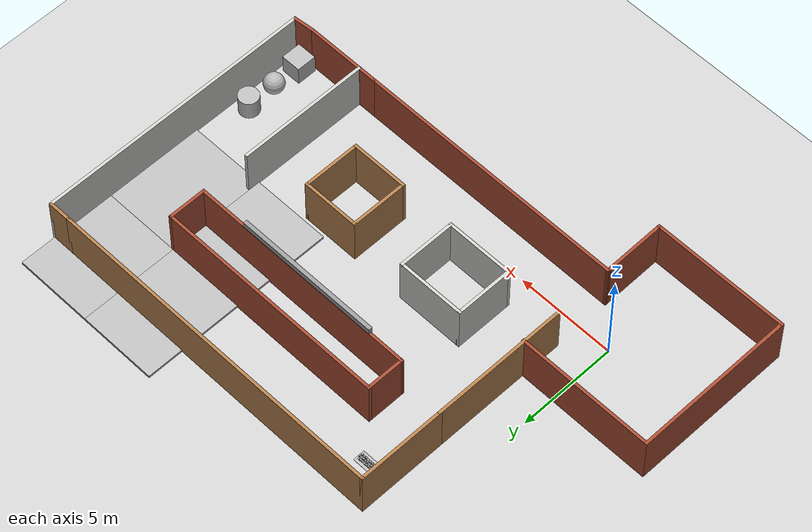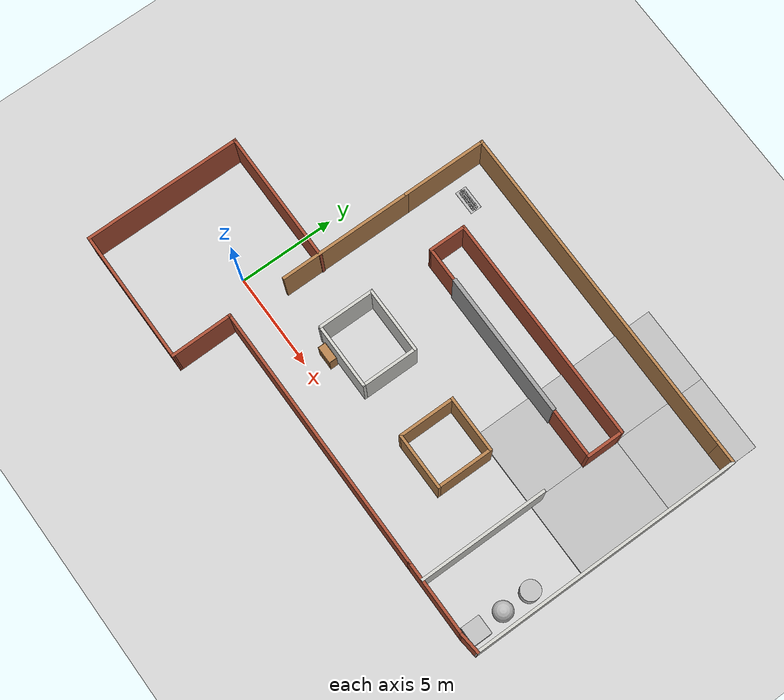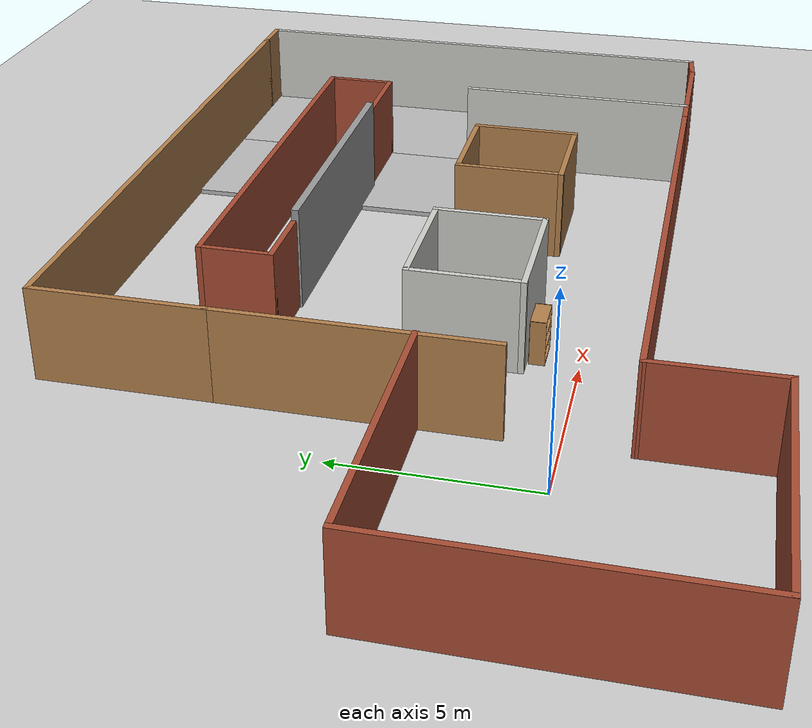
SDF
<sdf version="1.6">
 <world name="default">
  <light name="sun" type="directional">
   <pose>0 0 10 0 -0 0</pose>
   <diffuse>0.8 0.8 0.8 1</diffuse>
   <specular>0.1 0.1 0.1 1</specular>
   <attenuation>
    <range>1000</range>
    <constant>0.9</constant>
    <linear>0.01</linear>
    <quadratic>0.001</quadratic>
   </attenuation>
   <direction>-0.5 0.5 -1</direction>
  </light>
  <model name="ground_plane">
   <static>1</static>
   <link name="link">
    <collision name="collision">
     <geometry><plane><normal>0 0 1</normal><size>100 100</size></plane></geometry>
     <surface><friction><ode><mu>100</mu><mu2>50</mu2></ode></friction></surface>
    </collision>
    <visual name="visual">
     <cast_shadows>0</cast_shadows>
     <geometry><plane><normal>0 0 1</normal><size>100 100</size></plane></geometry>
     <material>
      <script><uri>file://media/materials/scripts/gazebo.material</uri><name>Gazebo/Grey</name></script>
     </material>
    </visual>
   </link>
  </model>
  <gravity>0 0 -9.8</gravity>
  <magnetic_field>6e-06 2.3e-05 -4.2e-05</magnetic_field>
  <atmosphere type="adiabatic"/>
  <physics name="default_physics" default="0" type="ode">
   <max_step_size>0.001</max_step_size>
   <real_time_factor>1</real_time_factor>
   <real_time_update_rate>1000</real_time_update_rate>
  </physics>
  <scene><ambient>0.4 0.4 0.4 1</ambient><background>0.7 0.7 0.7 1</background><shadows>1</shadows></scene>
  <spherical_coordinates>
   <surface_model>EARTH_WGS84</surface_model>
   <latitude_deg>0</latitude_deg>
   <longitude_deg>0</longitude_deg>
   <elevation>0</elevation>
   <heading_deg>0</heading_deg>
  </spherical_coordinates>
  <model name="building3">
   <pose>7.70597 3.90215 0 0 -0 0</pose>
   <link name="Wall_36">
    <collision name="Wall_36_Collision">
     <geometry><box><size>14 0.15 2.5</size></box></geometry>
     <pose>0 0 1.25 0 -0 0</pose>
    </collision>
    <visual name="Wall_36_Visual">
     <pose>0 0 1.25 0 -0 0</pose>
     <geometry><box><size>14 0.15 2.5</size></box></geometry>
     <material>
      <script><uri>file://media/materials/scripts/gazebo.material</uri><name>Gazebo/Bricks</name></script>
      <ambient>1 1 1 1</ambient>
     </material>
    </visual>
    <pose>0.979562 -5.53454 0 0 -0 0</pose>
   </link>
   <link name="Wall_40">
    <collision name="Wall_40_Collision">
     <geometry><box><size>7 0.15 2.5</size></box></geometry>
     <pose>0 0 1.25 0 -0 0</pose>
    </collision>
    <visual name="Wall_40_Visual">
     <pose>0 0 1.25 0 -0 0</pose>
     <geometry><box><size>7 0.15 2.5</size></box></geometry>
     <material>
      <script><uri>file://media/materials/scripts/gazebo.material</uri><name>Gazebo/Wood</name></script>
      <ambient>1 1 1 1</ambient>
     </material>
    </visual>
    <pose>-5.94544 0.890463 0 0 0 -1.5708</pose>
   </link>
   <link name="Wall_44">
    <collision name="Wall_44_Collision">
     <geometry><box><size>3 0.15 2.5</size></box></geometry>
     <pose>0 0 1.25 0 -0 0</pose>
    </collision>
    <visual name="Wall_44_Visual">
     <pose>0 0 1.25 0 -0 0</pose>
     <geometry><box><size>3 0.15 2.5</size></box></geometry>
     <material>
      <script><uri>file://media/materials/scripts/gazebo.material</uri><name>Gazebo/CeilingTiled</name></script>
      <ambient>1 1 1 1</ambient>
     </material>
    </visual>
    <pose>-3.09544 -1.10954 0 0 -0 1.5708</pose>
   </link>
   <link name="Wall_45">
    <collision name="Wall_45_Collision">
     <geometry><box><size>3.5 0.15 2.5</size></box></geometry>
     <pose>0 0 1.25 0 -0 0</pose>
    </collision>
    <visual name="Wall_45_Visual">
     <pose>0 0 1.25 0 -0 0</pose>
     <geometry><box><size>3.5 0.15 2.5</size></box></geometry>
     <material>
      <script><uri>file://media/materials/scripts/gazebo.material</uri><name>Gazebo/CeilingTiled</name></script>
      <ambient>1 1 1 1</ambient>
     </material>
    </visual>
    <pose>-1.42044 0.315463 0 0 -0 0</pose>
   </link>
   <link name="Wall_46">
    <collision name="Wall_46_Collision">
     <geometry><box><size>3 0.15 2.5</size></box></geometry>
     <pose>0 0 1.25 0 -0 0</pose>
    </collision>
    <visual name="Wall_46_Visual">
     <pose>0 0 1.25 0 -0 0</pose>
     <geometry><box><size>3 0.15 2.5</size></box></geometry>
     <material>
      <script><uri>file://media/materials/scripts/gazebo.material</uri><name>Gazebo/CeilingTiled</name></script>
      <ambient>1 1 1 1</ambient>
     </material>
    </visual>
    <pose>0.254562 -1.10954 0 0 0 -1.5708</pose>
   </link>
   <link name="Wall_47">
    <collision name="Wall_47_Collision">
     <geometry><box><size>3.5 0.15 2.5</size></box></geometry>
     <pose>0 0 1.25 0 -0 0</pose>
    </collision>
    <visual name="Wall_47_Visual">
     <pose>0 0 1.25 0 -0 0</pose>
     <geometry><box><size>3.5 0.15 2.5</size></box></geometry>
     <material>
      <script><uri>file://media/materials/scripts/gazebo.material</uri><name>Gazebo/CeilingTiled</name></script>
      <ambient>1 1 1 1</ambient>
     </material>
    </visual>
    <pose>-1.42044 -2.53454 0 0 -0 3.14159</pose>
   </link>
   <link name="Wall_50">
    <collision name="Wall_50_Collision">
     <geometry><box><size>3 0.15 2.5</size></box></geometry>
     <pose>0 0 1.25 0 -0 0</pose>
    </collision>
    <visual name="Wall_50_Visual">
     <pose>0 0 1.25 0 -0 0</pose>
     <geometry><box><size>3 0.15 2.5</size></box></geometry>
     <material>
      <script><uri>file://media/materials/scripts/gazebo.material</uri><name>Gazebo/Wood</name></script>
      <ambient>0.435294 0.796078 0.67451 1</ambient>
     </material>
    </visual>
    <pose>3.10456 -1.10954 0 0 -0 1.5708</pose>
   </link>
   <link name="Wall_51">
    <collision name="Wall_51_Collision">
     <geometry><box><size>3 0.15 2.5</size></box></geometry>
     <pose>0 0 1.25 0 -0 0</pose>
    </collision>
    <visual name="Wall_51_Visual">
     <pose>0 0 1.25 0 -0 0</pose>
     <geometry><box><size>3 0.15 2.5</size></box></geometry>
     <material>
      <script><uri>file://media/materials/scripts/gazebo.material</uri><name>Gazebo/Wood</name></script>
      <ambient>1 1 1 1</ambient>
     </material>
    </visual>
    <pose>4.52956 0.315463 0 0 -0 0</pose>
   </link>
   <link name="Wall_52">
    <collision name="Wall_52_Collision">
     <geometry><box><size>3 0.15 2.5</size></box></geometry>
     <pose>0 0 1.25 0 -0 0</pose>
    </collision>
    <visual name="Wall_52_Visual">
     <pose>0 0 1.25 0 -0 0</pose>
     <geometry><box><size>3 0.15 2.5</size></box></geometry>
     <material>
      <script><uri>file://media/materials/scripts/gazebo.material</uri><name>Gazebo/Wood</name></script>
      <ambient>0.435294 0.796078 0.67451 1</ambient>
     </material>
    </visual>
    <pose>5.95456 -1.10954 0 0 0 -1.5708</pose>
   </link>
   <link name="Wall_53">
    <collision name="Wall_53_Collision">
     <geometry><box><size>3 0.15 2.5</size></box></geometry>
     <pose>0 0 1.25 0 -0 0</pose>
    </collision>
    <visual name="Wall_53_Visual">
     <pose>0 0 1.25 0 -0 0</pose>
     <geometry><box><size>3 0.15 2.5</size></box></geometry>
     <material>
      <script><uri>file://media/materials/scripts/gazebo.material</uri><name>Gazebo/Wood</name></script>
      <ambient>1 1 1 1</ambient>
     </material>
    </visual>
    <pose>4.52956 -2.53454 0 0 -0 3.14159</pose>
   </link>
   <link name="Wall_61">
    <collision name="Wall_61_Collision">
     <geometry><box><size>4 0.15 2.5</size></box></geometry>
     <pose>0 0 1.25 0 -0 0</pose>
    </collision>
    <visual name="Wall_61_Visual">
     <pose>0 0 1.25 0 -0 0</pose>
     <geometry><box><size>4 0.15 2.5</size></box></geometry>
     <material>
      <script><uri>file://media/materials/scripts/gazebo.material</uri><name>Gazebo/Bricks</name></script>
      <ambient>1 1 1 1</ambient>
     </material>
    </visual>
    <pose>9.82956 -5.53454 0 0 -0 0</pose>
   </link>
   <link name="Wall_65">
    <collision name="Wall_65_Collision">
     <geometry><box><size>12 0.15 2.5</size></box></geometry>
     <pose>0 0 1.25 0 -0 0</pose>
    </collision>
    <visual name="Wall_65_Visual">
     <pose>0 0 1.25 0 -0 0</pose>
     <geometry><box><size>12 0.15 2.5</size></box></geometry>
     <material>
      <script><uri>file://media/materials/scripts/gazebo.material</uri><name>Gazebo/Bricks</name></script>
      <ambient>1 1 1 1</ambient>
     </material>
    </visual>
    <pose>2.82956 3.66546 0 0 -0 0</pose>
   </link>
   <link name="Wall_66">
    <collision name="Wall_66_Collision">
     <geometry><box><size>2 0.15 2.5</size></box></geometry>
     <pose>0 0 1.25 0 -0 0</pose>
    </collision>
    <visual name="Wall_66_Visual">
     <pose>0 0 1.25 0 -0 0</pose>
     <geometry><box><size>2 0.15 2.5</size></box></geometry>
     <material>
      <script><uri>file://media/materials/scripts/gazebo.material</uri><name>Gazebo/Bricks</name></script>
      <ambient>1 1 1 1</ambient>
     </material>
    </visual>
    <pose>8.75456 4.59046 0 0 -0 1.5708</pose>
   </link>
   <link name="Wall_67">
    <collision name="Wall_67_Collision">
     <geometry><box><size>12 0.15 2.5</size></box></geometry>
     <pose>0 0 1.25 0 -0 0</pose>
    </collision>
    <visual name="Wall_67_Visual">
     <pose>0 0 1.25 0 -0 0</pose>
     <geometry><box><size>12 0.15 2.5</size></box></geometry>
     <material>
      <script><uri>file://media/materials/scripts/gazebo.material</uri><name>Gazebo/Bricks</name></script>
      <ambient>1 1 1 1</ambient>
     </material>
    </visual>
    <pose>2.82956 5.51546 0 0 -0 3.14159</pose>
   </link>
   <link name="Wall_68">
    <collision name="Wall_68_Collision">
     <geometry><box><size>2 0.15 2.5</size></box></geometry>
     <pose>0 0 1.25 0 -0 0</pose>
    </collision>
    <visual name="Wall_68_Visual">
     <pose>0 0 1.25 0 -0 0</pose>
     <geometry><box><size>2 0.15 2.5</size></box></geometry>
     <material>
      <script><uri>file://media/materials/scripts/gazebo.material</uri><name>Gazebo/Bricks</name></script>
      <ambient>1 1 1 1</ambient>
     </material>
    </visual>
    <pose>-3.09544 4.59046 0 0 0 -1.5708</pose>
   </link>
   <link name="Wall_70">
    <collision name="Wall_70_Collision">
     <geometry><box><size>6.75 0.15 2.5</size></box></geometry>
     <pose>0 0 1.25 0 -0 0</pose>
    </collision>
    <visual name="Wall_70_Visual">
     <pose>0 0 1.25 0 -0 0</pose>
     <geometry><box><size>6.75 0.15 2.5</size></box></geometry>
     <material>
      <script><uri>file://media/materials/scripts/gazebo.material</uri><name>Gazebo/CeilingTiled</name></script>
      <ambient>0.760784 0.662745 0.627451 1</ambient>
     </material>
    </visual>
    <pose>8.839 -2.20942 0 0 -0 1.5708</pose>
   </link>
   <link name="Wall_76">
    <collision name="Wall_76_Collision">
     <geometry><box><size>4.5 0.15 2.5</size></box></geometry>
     <pose>0 0 1.25 0 -0 0</pose>
    </collision>
    <visual name="Wall_76_Visual">
     <pose>0 0 1.25 0 -0 0</pose>
     <geometry><box><size>4.5 0.15 2.5</size></box></geometry>
     <material>
      <script><uri>file://media/materials/scripts/gazebo.material</uri><name>Gazebo/Wood</name></script>
      <ambient>0.435294 0.796078 0.67451 1</ambient>
     </material>
    </visual>
    <pose>-5.94544 6.49046 0 0 -0 1.5708</pose>
   </link>
   <link name="Wall_77">
    <collision name="Wall_77_Collision">
     <geometry><box><size>17.75 0.15 2.5</size></box></geometry>
     <pose>0 0 1.25 0 -0 0</pose>
    </collision>
    <visual name="Wall_77_Visual">
     <pose>0 0 1.25 0 -0 0</pose>
     <geometry><box><size>17.75 0.15 2.5</size></box></geometry>
     <material>
      <script><uri>file://media/materials/scripts/gazebo.material</uri><name>Gazebo/Wood</name></script>
      <ambient>1 1 1 1</ambient>
     </material>
    </visual>
    <pose>2.85456 8.66546 0 0 -0 0</pose>
   </link>
   <link name="Wall_79">
    <collision name="Wall_79_Collision">
     <geometry><box><size>1.25 0.15 2.5</size></box></geometry>
     <pose>0 0 1.25 0 -0 0</pose>
    </collision>
    <visual name="Wall_79_Visual">
     <pose>0 0 1.25 0 -0 0</pose>
     <geometry><box><size>1.25 0.15 2.5</size></box></geometry>
     <material>
      <script><uri>file://media/materials/scripts/gazebo.material</uri><name>Gazebo/Wood</name></script>
      <ambient>1 0.764706 0.305882 1</ambient>
     </material>
    </visual>
    <pose>12.2046 8.66546 0 0 -0 0</pose>
   </link>
   <link name="Wall_80">
    <collision name="Wall_80_Collision">
     <geometry><box><size>14.25 0.15 2.5</size></box></geometry>
     <pose>0 0 1.25 0 -0 0</pose>
    </collision>
    <visual name="Wall_80_Visual">
     <pose>0 0 1.25 0 -0 0</pose>
     <geometry><box><size>14.25 0.15 2.5</size></box></geometry>
     <material>
      <script><uri>file://media/materials/scripts/gazebo.material</uri><name>Gazebo/CeilingTiled</name></script>
      <ambient>0.996078 0.47451 0.0196078 1</ambient>
     </material>
    </visual>
    <pose>12.7546 1.61546 0 0 0 -1.5708</pose>
   </link>
   <link name="Wall_82">
    <collision name="Wall_82_Collision">
     <geometry><box><size>1.15499 0.15 2.5</size></box></geometry>
     <pose>0 0 1.25 0 -0 0</pose>
    </collision>
    <visual name="Wall_82_Visual">
     <pose>0 0 1.25 0 -0 0</pose>
     <geometry><box><size>1.15499 0.15 2.5</size></box></geometry>
     <material>
      <script><uri>file://media/materials/scripts/gazebo.material</uri><name>Gazebo/Bricks</name></script>
      <ambient>1 1 1 1</ambient>
     </material>
    </visual>
    <pose>12.2546 -5.48454 0 0 -0 0.099669</pose>
   </link>
   <link name="Wall_84">
    <collision name="Wall_84_Collision">
     <geometry><box><size>7 0.15 2.5</size></box></geometry>
     <pose>0 0 1.25 0 -0 0</pose>
    </collision>
    <visual name="Wall_84_Visual">
     <pose>0 0 1.25 0 -0 0</pose>
     <geometry><box><size>7 0.15 2.5</size></box></geometry>
     <material>
      <script><uri>file://media/materials/scripts/gazebo.material</uri><name>Gazebo/Bricks</name></script>
      <ambient>1 1 1 1</ambient>
     </material>
    </visual>
    <pose>-9.33665 -0.564658 0 0 -0 3.14159</pose>
   </link>
   <link name="Wall_85">
    <collision name="Wall_85_Collision">
     <geometry><box><size>8.25 0.15 2.5</size></box></geometry>
     <pose>0 0 1.25 0 -0 0</pose>
    </collision>
    <visual name="Wall_85_Visual">
     <pose>0 0 1.25 0 -0 0</pose>
     <geometry><box><size>8.25 0.15 2.5</size></box></geometry>
     <material>
      <script><uri>file://media/materials/scripts/gazebo.material</uri><name>Gazebo/Bricks</name></script>
      <ambient>1 1 1 1</ambient>
     </material>
    </visual>
    <pose>-12.7617 -4.61466 0 0 0 -1.5708</pose>
   </link>
   <link name="Wall_86">
    <collision name="Wall_86_Collision">
     <geometry><box><size>7 0.15 2.5</size></box></geometry>
     <pose>0 0 1.25 0 -0 0</pose>
    </collision>
    <visual name="Wall_86_Visual">
     <pose>0 0 1.25 0 -0 0</pose>
     <geometry><box><size>7 0.15 2.5</size></box></geometry>
     <material>
      <script><uri>file://media/materials/scripts/gazebo.material</uri><name>Gazebo/Bricks</name></script>
      <ambient>1 1 1 1</ambient>
     </material>
    </visual>
    <pose>-9.33665 -8.66466 0 0 -0 0</pose>
   </link>
   <link name="Wall_87">
    <collision name="Wall_87_Collision">
     <geometry><box><size>3.2803 0.15 2.5</size></box></geometry>
     <pose>0 0 1.25 0 -0 0</pose>
    </collision>
    <visual name="Wall_87_Visual">
     <pose>0 0 1.25 0 -0 0</pose>
     <geometry><box><size>3.2803 0.15 2.5</size></box></geometry>
     <material>
      <script><uri>file://media/materials/scripts/gazebo.material</uri><name>Gazebo/Bricks</name></script>
      <ambient>1 1 1 1</ambient>
     </material>
    </visual>
    <pose>-5.92854 -7.0996 0 0 -0 1.58159</pose>
   </link>
   <static>1</static>
  </model>
  <model name="grey_wall">
   <static>1</static>
   <link name="link">
    <pose>0 0 1.4 0 -0 0</pose>
    <collision name="collision"><geometry><box><size>7.5 0.2 2.8</size></box></geometry></collision>
    <visual name="visual">
     <cast_shadows>0</cast_shadows>
     <geometry><box><size>7.5 0.2 2.8</size></box></geometry>
     <material>
      <script>
       <uri>model://grey_wall/materials/scripts</uri>
       <uri>model://grey_wall/materials/textures</uri>
       <name>vrc/grey_wall</name>
      </script>
     </material>
    </visual>
   </link>
   <pose>10.1875 7.53193 0 0 -0 0</pose>
  </model>
  <model name="frc2016_roughterrain">
   <static>1</static>
   <link name="link">
    <visual name="platform">
     <pose>0 0 0.08269 0 -0 0</pose>
     <geometry><box><size>1.27 0.5969 0.003175</size></box></geometry>
    </visual>
    <collision name="platform">
     <pose>0 0 0.08269 0 -0 0</pose>
     <geometry><box><size>1.27 0.5969 0.003175</size></box></geometry>
    </collision>
    <visual name="row1_block1_sm">
     <pose>0.51435 0.1143 0.09698 0 -0 0</pose>
     <geometry><box><size>0.0762 0.0762 0.0254</size></box></geometry>
    </visual>
    <collision name="row1_block1_sm">
     <pose>0.51435 0.1143 0.09698 0 -0 0</pose>
     <geometry><box><size>0.0762 0.0762 0.0254</size></box></geometry>
    </collision>
    <visual name="row1_block2_lg">
     <pose>0.40005 0.1143 0.12238 0 -0 0</pose>
     <geometry><box><size>0.0762 0.0762 0.0762</size></box></geometry>
    </visual>
    <collision name="row1_block2_lg">
     <pose>0.40005 0.1143 0.12238 0 -0 0</pose>
     <geometry><box><size>0.0762 0.0762 0.0762</size></box></geometry>
    </collision>
    <visual name="row1_block3_md">
     <pose>0.28575 0.1143 0.10968 0 -0 0</pose>
     <geometry><box><size>0.0762 0.0762 0.0508</size></box></geometry>
    </visual>
    <collision name="row1_block3_md">
     <pose>0.28575 0.1143 0.10968 0 -0 0</pose>
     <geometry><box><size>0.0762 0.0762 0.0508</size></box></geometry>
    </collision>
    <visual name="row1_block4_sm">
     <pose>0.17145 0.1143 0.09698 0 -0 0</pose>
     <geometry><box><size>0.0762 0.0762 0.0254</size></box></geometry>
    </visual>
    <collision name="row1_block4_sm">
     <pose>0.17145 0.1143 0.09698 0 -0 0</pose>
     <geometry><box><size>0.0762 0.0762 0.0254</size></box></geometry>
    </collision>
    <visual name="row1_block5_md">
     <pose>0.05715 0.1143 0.10968 0 -0 0</pose>
     <geometry><box><size>0.0762 0.0762 0.0508</size></box></geometry>
    </visual>
    <collision name="row1_block5_md">
     <pose>0.05715 0.1143 0.10968 0 -0 0</pose>
     <geometry><box><size>0.0762 0.0762 0.0508</size></box></geometry>
    </collision>
    <visual name="row1_block6_lg">
     <pose>-0.05715 0.1143 0.12238 0 -0 0</pose>
     <geometry><box><size>0.0762 0.0762 0.0762</size></box></geometry>
    </visual>
    <collision name="row1_block6_lg">
     <pose>-0.05715 0.1143 0.12238 0 -0 0</pose>
     <geometry><box><size>0.0762 0.0762 0.0762</size></box></geometry>
    </collision>
    <visual name="row1_block7_sm">
     <pose>-0.17145 0.1143 0.09698 0 -0 0</pose>
     <geometry><box><size>0.0762 0.0762 0.0254</size></box></geometry>
    </visual>
    <collision name="row1_block7_sm">
     <pose>-0.17145 0.1143 0.09698 0 -0 0</pose>
     <geometry><box><size>0.0762 0.0762 0.0254</size></box></geometry>
    </collision>
    <visual name="row1_block8_sm">
     <pose>-0.28575 0.1143 0.09698 0 -0 0</pose>
     <geometry><box><size>0.0762 0.0762 0.0254</size></box></geometry>
    </visual>
    <collision name="row1_block8_sm">
     <pose>-0.28575 0.1143 0.09698 0 -0 0</pose>
     <geometry><box><size>0.0762 0.0762 0.0254</size></box></geometry>
    </collision>
    <visual name="row1_block9_md">
     <pose>-0.40005 0.1143 0.10968 0 -0 0</pose>
     <geometry><box><size>0.0762 0.0762 0.0508</size></box></geometry>
    </visual>
    <collision name="row1_block9_md">
     <pose>-0.40005 0.1143 0.10968 0 -0 0</pose>
     <geometry><box><size>0.0762 0.0762 0.0508</size></box></geometry>
    </collision>
    <visual name="row1_block10_lg">
     <pose>-0.51435 0.1143 0.12238 0 -0 0</pose>
     <geometry><box><size>0.0762 0.0762 0.0762</size></box></geometry>
    </visual>
    <collision name="row1_block10_lg">
     <pose>-0.51435 0.1143 0.12238 0 -0 0</pose>
     <geometry><box><size>0.0762 0.0762 0.0762</size></box></geometry>
    </collision>
    <visual name="row2_block1_md">
     <pose>0.5715 0 0.10968 0 -0 0</pose>
     <geometry><box><size>0.0762 0.0762 0.0508</size></box></geometry>
    </visual>
    <collision name="row2_block1_md">
     <pose>0.5715 0 0.10968 0 -0 0</pose>
     <geometry><box><size>0.0762 0.0762 0.0508</size></box></geometry>
    </collision>
    <visual name="row2_block2_sm">
     <pose>0.4572 0 0.09698 0 -0 0</pose>
     <geometry><box><size>0.0762 0.0762 0.0254</size></box></geometry>
    </visual>
    <collision name="row2_block2_sm">
     <pose>0.4572 0 0.09698 0 -0 0</pose>
     <geometry><box><size>0.0762 0.0762 0.0254</size></box></geometry>
    </collision>
    <visual name="row2_block3_lg">
     <pose>0.3429 0 0.12238 0 -0 0</pose>
     <geometry><box><size>0.0762 0.0762 0.0762</size></box></geometry>
    </visual>
    <collision name="row2_block3_lg">
     <pose>0.3429 0 0.12238 0 -0 0</pose>
     <geometry><box><size>0.0762 0.0762 0.0762</size></box></geometry>
    </collision>
    <visual name="row2_block4_md">
     <pose>0.2286 0 0.10968 0 -0 0</pose>
     <geometry><box><size>0.0762 0.0762 0.0508</size></box></geometry>
    </visual>
    <collision name="row2_block4_md">
     <pose>0.2286 0 0.10968 0 -0 0</pose>
     <geometry><box><size>0.0762 0.0762 0.0508</size></box></geometry>
    </collision>
    <visual name="row2_block5_lg">
     <pose>0.1143 0 0.12238 0 -0 0</pose>
     <geometry><box><size>0.0762 0.0762 0.0762</size></box></geometry>
    </visual>
    <collision name="row2_block5_lg">
     <pose>0.1143 0 0.12238 0 -0 0</pose>
     <geometry><box><size>0.0762 0.0762 0.0762</size></box></geometry>
    </collision>
    <visual name="row2_block6_sm">
     <pose>0 0 0.09698 0 -0 0</pose>
     <geometry><box><size>0.0762 0.0762 0.0254</size></box></geometry>
    </visual>
    <collision name="row2_block6_sm">
     <pose>0 0 0.09698 0 -0 0</pose>
     <geometry><box><size>0.0762 0.0762 0.0254</size></box></geometry>
    </collision>
    <visual name="row2_block7_md">
     <pose>-0.1143 0 0.10968 0 -0 0</pose>
     <geometry><box><size>0.0762 0.0762 0.0508</size></box></geometry>
    </visual>
    <collision name="row2_block7_md">
     <pose>-0.1143 0 0.10968 0 -0 0</pose>
     <geometry><box><size>0.0762 0.0762 0.0508</size></box></geometry>
    </collision>
    <visual name="row2_block8_lg">
     <pose>-0.2286 0 0.12238 0 -0 0</pose>
     <geometry><box><size>0.0762 0.0762 0.0762</size></box></geometry>
    </visual>
    <collision name="row2_block8_lg">
     <pose>-0.2286 0 0.12238 0 -0 0</pose>
     <geometry><box><size>0.0762 0.0762 0.0762</size></box></geometry>
    </collision>
    <visual name="row2_block9_sm">
     <pose>-0.3429 0 0.09698 0 -0 0</pose>
     <geometry><box><size>0.0762 0.0762 0.0254</size></box></geometry>
    </visual>
    <collision name="row2_block9_sm">
     <pose>-0.3429 0 0.09698 0 -0 0</pose>
     <geometry><box><size>0.0762 0.0762 0.0254</size></box></geometry>
    </collision>
    <visual name="row2_block10_lg">
     <pose>-0.4572 0 0.12238 0 -0 0</pose>
     <geometry><box><size>0.0762 0.0762 0.0762</size></box></geometry>
    </visual>
    <collision name="row2_block10_lg">
     <pose>-0.4572 0 0.12238 0 -0 0</pose>
     <geometry><box><size>0.0762 0.0762 0.0762</size></box></geometry>
    </collision>
    <visual name="row2_block11_md">
     <pose>-0.5715 0 0.10968 0 -0 0</pose>
     <geometry><box><size>0.0762 0.0762 0.0508</size></box></geometry>
    </visual>
    <collision name="row2_block11_md">
     <pose>-0.5715 0 0.10968 0 -0 0</pose>
     <geometry><box><size>0.0762 0.0762 0.0508</size></box></geometry>
    </collision>
    <visual name="row3_block1_lg">
     <pose>0.51435 -0.1143 0.12238 0 -0 0</pose>
     <geometry><box><size>0.0762 0.0762 0.0762</size></box></geometry>
    </visual>
    <collision name="row3_block1_lg">
     <pose>0.51435 -0.1143 0.12238 0 -0 0</pose>
     <geometry><box><size>0.0762 0.0762 0.0762</size></box></geometry>
    </collision>
    <visual name="row3_block2_md">
     <pose>0.40005 -0.1143 0.10968 0 -0 0</pose>
     <geometry><box><size>0.0762 0.0762 0.0508</size></box></geometry>
    </visual>
    <collision name="row3_block2_md">
     <pose>0.40005 -0.1143 0.10968 0 -0 0</pose>
     <geometry><box><size>0.0762 0.0762 0.0508</size></box></geometry>
    </collision>
    <visual name="row3_block3_lg">
     <pose>0.28575 -0.1143 0.12238 0 -0 0</pose>
     <geometry><box><size>0.0762 0.0762 0.0762</size></box></geometry>
    </visual>
    <collision name="row3_block3_lg">
     <pose>0.28575 -0.1143 0.12238 0 -0 0</pose>
     <geometry><box><size>0.0762 0.0762 0.0762</size></box></geometry>
    </collision>
    <visual name="row3_block4_sm">
     <pose>0.17145 -0.1143 0.09698 0 -0 0</pose>
     <geometry><box><size>0.0762 0.0762 0.0254</size></box></geometry>
    </visual>
    <collision name="row3_block4_sm">
     <pose>0.17145 -0.1143 0.09698 0 -0 0</pose>
     <geometry><box><size>0.0762 0.0762 0.0254</size></box></geometry>
    </collision>
    <visual name="row3_block5_md">
     <pose>0.05715 -0.1143 0.10968 0 -0 0</pose>
     <geometry><box><size>0.0762 0.0762 0.0508</size></box></geometry>
    </visual>
    <collision name="row3_block5_md">
     <pose>0.05715 -0.1143 0.10968 0 -0 0</pose>
     <geometry><box><size>0.0762 0.0762 0.0508</size></box></geometry>
    </collision>
    <visual name="row3_block6_md">
     <pose>-0.05715 -0.1143 0.10968 0 -0 0</pose>
     <geometry><box><size>0.0762 0.0762 0.0508</size></box></geometry>
    </visual>
    <collision name="row3_block6_md">
     <pose>-0.05715 -0.1143 0.10968 0 -0 0</pose>
     <geometry><box><size>0.0762 0.0762 0.0508</size></box></geometry>
    </collision>
    <visual name="row3_block7_lg">
     <pose>-0.17145 -0.1143 0.12238 0 -0 0</pose>
     <geometry><box><size>0.0762 0.0762 0.0762</size></box></geometry>
    </visual>
    <collision name="row3_block7_lg">
     <pose>-0.17145 -0.1143 0.12238 0 -0 0</pose>
     <geometry><box><size>0.0762 0.0762 0.0762</size></box></geometry>
    </collision>
    <visual name="row3_block8_sm">
     <pose>-0.28575 -0.1143 0.09698 0 -0 0</pose>
     <geometry><box><size>0.0762 0.0762 0.0254</size></box></geometry>
    </visual>
    <collision name="row3_block8_sm">
     <pose>-0.28575 -0.1143 0.09698 0 -0 0</pose>
     <geometry><box><size>0.0762 0.0762 0.0254</size></box></geometry>
    </collision>
    <visual name="row3_block9_md">
     <pose>-0.40005 -0.1143 0.10968 0 -0 0</pose>
     <geometry><box><size>0.0762 0.0762 0.0508</size></box></geometry>
    </visual>
    <collision name="row3_block9_md">
     <pose>-0.40005 -0.1143 0.10968 0 -0 0</pose>
     <geometry><box><size>0.0762 0.0762 0.0508</size></box></geometry>
    </collision>
    <visual name="row3_block10_sm">
     <pose>-0.51435 -0.1143 0.09698 0 -0 0</pose>
     <geometry><box><size>0.0762 0.0762 0.0254</size></box></geometry>
    </visual>
    <collision name="row3_block10_sm">
     <pose>-0.51435 -0.1143 0.09698 0 -0 0</pose>
     <geometry><box><size>0.0762 0.0762 0.0254</size></box></geometry>
    </collision>
   </link>
   <pose>3.03345 10.9399 0 0 -0 0</pose>
  </model>
  <model name="bookshelf">
   <static>1</static>
   <link name="link">
    <inertial><mass>1</mass></inertial>
    <collision name="back">
     <pose>0 0.005 0.6 0 -0 0</pose>
     <geometry><box><size>0.9 0.01 1.2</size></box></geometry>
    </collision>
    <visual name="visual1">
     <pose>0 0.005 0.6 0 -0 0</pose>
     <geometry><box><size>0.9 0.01 1.2</size></box></geometry>
     <material>
      <script><uri>file://media/materials/scripts/gazebo.material</uri><name>Gazebo/Wood</name></script>
     </material>
    </visual>
    <collision name="left_side">
     <pose>0.45 -0.195 0.6 0 -0 0</pose>
     <geometry><box><size>0.02 0.4 1.2</size></box></geometry>
    </collision>
    <visual name="visual2">
     <pose>0.45 -0.195 0.6 0 -0 0</pose>
     <geometry><box><size>0.02 0.4 1.2</size></box></geometry>
     <material>
      <script><uri>file://media/materials/scripts/gazebo.material</uri><name>Gazebo/Wood</name></script>
     </material>
    </visual>
    <collision name="right_side">
     <pose>-0.45 -0.195 0.6 0 -0 0</pose>
     <geometry><box><size>0.02 0.4 1.2</size></box></geometry>
    </collision>
    <visual name="visual3">
     <pose>-0.45 -0.195 0.6 0 -0 0</pose>
     <geometry><box><size>0.02 0.4 1.2</size></box></geometry>
     <material>
      <script><uri>file://media/materials/scripts/gazebo.material</uri><name>Gazebo/Wood</name></script>
     </material>
    </visual>
    <collision name="bottom">
     <pose>0 -0.195 0.03 0 -0 0</pose>
     <geometry><box><size>0.88 0.4 0.06</size></box></geometry>
    </collision>
    <visual name="visual4">
     <pose>0 -0.195 0.03 0 -0 0</pose>
     <geometry><box><size>0.88 0.4 0.06</size></box></geometry>
     <material>
      <script><uri>file://media/materials/scripts/gazebo.material</uri><name>Gazebo/Wood</name></script>
     </material>
    </visual>
    <collision name="top">
     <pose>0 -0.195 1.19 0 -0 0</pose>
     <geometry><box><size>0.88 0.4 0.02</size></box></geometry>
    </collision>
    <visual name="visual5">
     <pose>0 -0.195 1.19 0 -0 0</pose>
     <geometry><box><size>0.88 0.4 0.02</size></box></geometry>
     <material>
      <script><uri>file://media/materials/scripts/gazebo.material</uri><name>Gazebo/Wood</name></script>
     </material>
    </visual>
    <collision name="low_shelf">
     <pose>0 -0.195 0.43 0 -0 0</pose>
     <geometry><box><size>0.88 0.4 0.02</size></box></geometry>
    </collision>
    <visual name="visual6">
     <pose>0 -0.195 0.43 0 -0 0</pose>
     <geometry><box><size>0.88 0.4 0.02</size></box></geometry>
     <material>
      <script><uri>file://media/materials/scripts/gazebo.material</uri><name>Gazebo/Wood</name></script>
     </material>
    </visual>
    <collision name="high_shelf">
     <pose>0 -0.195 0.8 0 -0 0</pose>
     <geometry><box><size>0.88 0.4 0.02</size></box></geometry>
    </collision>
    <visual name="visual7">
     <pose>0 -0.195 0.8 0 -0 0</pose>
     <geometry><box><size>0.88 0.4 0.02</size></box></geometry>
     <material>
      <script><uri>file://media/materials/scripts/gazebo.material</uri><name>Gazebo/Wood</name></script>
     </material>
    </visual>
   </link>
   <pose>5.47362 1.24538 0 0 -0 0</pose>
  </model>
  <model name="mud_box">
   <static>1</static>
   <link name="link">
    <collision name="collision"><geometry><box><size>8 10 0.2</size></box></geometry></collision>
    <visual name="visual_1">
     <pose>-2 2.5 0 0 -0 0</pose>
     <cast_shadows>0</cast_shadows>
     <geometry><box><size>4 5 0.2</size></box></geometry>
     <material>
      <script>
       <uri>model://mud_box/materials/scripts</uri>
       <uri>model://mud_box/materials/textures</uri>
       <name>vrc/mud</name>
      </script>
     </material>
    </visual>
    <visual name="visual_2">
     <pose>2 2.5 0 0 -0 0</pose>
     <cast_shadows>0</cast_shadows>
     <geometry><box><size>4 5 0.2</size></box></geometry>
     <material>
      <script>
       <uri>model://mud_box/materials/scripts</uri>
       <uri>model://mud_box/materials/textures</uri>
       <name>vrc/mud</name>
      </script>
     </material>
    </visual>
    <visual name="visual_3">
     <pose>2 -2.5 0 0 -0 0</pose>
     <cast_shadows>0</cast_shadows>
     <geometry><box><size>4 5 0.2</size></box></geometry>
     <material>
      <script>
       <uri>model://mud_box/materials/scripts</uri>
       <uri>model://mud_box/materials/textures</uri>
       <name>vrc/mud</name>
      </script>
     </material>
    </visual>
    <visual name="visual_4">
     <pose>-2 -2.5 0 0 -0 0</pose>
     <cast_shadows>0</cast_shadows>
     <geometry><box><size>4 5 0.2</size></box></geometry>
     <material>
      <script>
       <uri>model://mud_box/materials/scripts</uri>
       <uri>model://mud_box/materials/textures</uri>
       <name>vrc/mud</name>
      </script>
     </material>
    </visual>
   </link>
   <pose>16.4524 9.48212 0 0 -0 0</pose>
  </model>
  <model name="textured_shapes">
   <pose>19.6357 0.572952 0.55 0 -0 0</pose>
   <link name="box">
    <pose>0 -1.5 0 0 -0 0</pose>
    <collision name="collision"><geometry><box><size>1 1 1</size></box></geometry></collision>
    <visual name="visual">
     <geometry><box><size>1 1 1</size></box></geometry>
     <material>
      <script>
       <uri>model://textured_shapes/materials/scripts</uri>
       <uri>model://textured_shapes/materials/textures</uri>
       <name>TexturedShape/Squares</name>
      </script>
     </material>
    </visual>
    <inertial>
     <inertia><ixx>1</ixx><ixy>0</ixy><ixz>0</ixz><iyy>1</iyy><iyz>0</iyz><izz>1</izz></inertia>
     <mass>1</mass>
    </inertial>
   </link>
   <link name="sphere">
    <collision name="collision"><geometry><sphere><radius>0.5</radius></sphere></geometry></collision>
    <visual name="visual">
     <geometry><sphere><radius>0.5</radius></sphere></geometry>
     <material>
      <script>
       <uri>model://textured_shapes/materials/scripts</uri>
       <uri>model://textured_shapes/materials/textures</uri>
       <name>TexturedShape/Squares</name>
      </script>
     </material>
    </visual>
    <inertial>
     <inertia><ixx>1</ixx><ixy>0</ixy><ixz>0</ixz><iyy>1</iyy><iyz>0</iyz><izz>1</izz></inertia>
     <mass>1</mass>
    </inertial>
   </link>
   <link name="cylinder">
    <pose>0 1.5 0 0 -0 0</pose>
    <collision name="collision">
     <geometry><cylinder><radius>0.5</radius><length>1</length></cylinder></geometry>
    </collision>
    <visual name="visual">
     <geometry><cylinder><radius>0.5</radius><length>1</length></cylinder></geometry>
     <material>
      <script>
       <uri>model://textured_shapes/materials/scripts</uri>
       <uri>model://textured_shapes/materials/textures</uri>
       <name>TexturedShape/Squares</name>
      </script>
     </material>
    </visual>
    <inertial>
     <inertia><ixx>1</ixx><ixy>0</ixy><ixz>0</ixz><iyy>1</iyy><iyz>0</iyz><izz>1</izz></inertia>
     <mass>1</mass>
    </inertial>
   </link>
  </model>
 </world>
</sdf>
